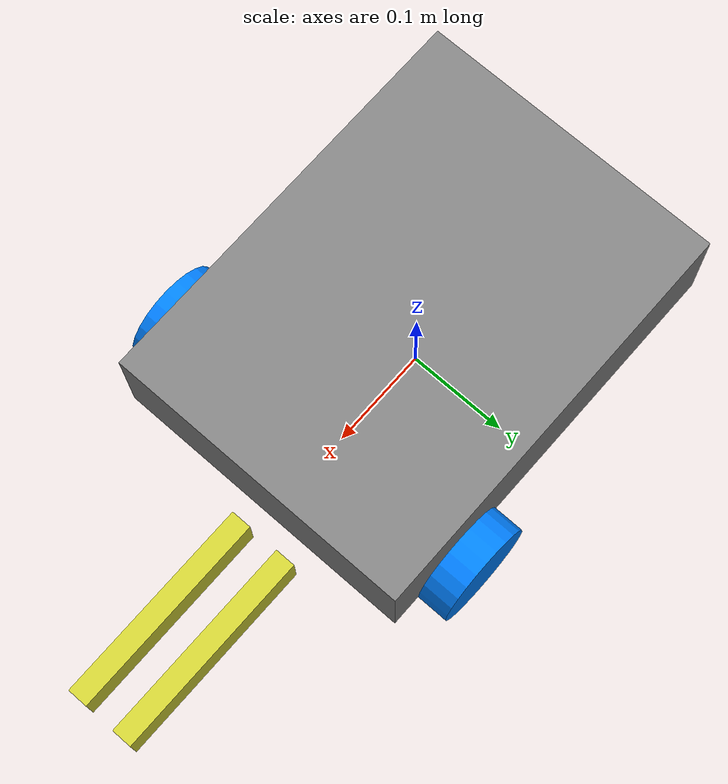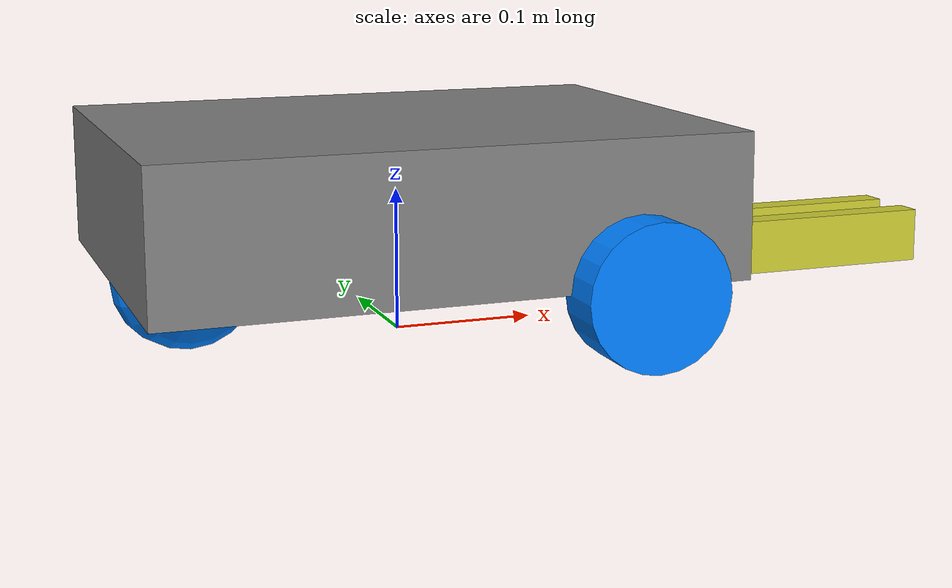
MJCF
<mujoco model="mobile_robot">
  <option timestep="0.002" />

  <asset>
    <mesh file="assets/gear_50.stl" name="gear_50" scale="0.002 0.002 0.002"/>
    <mesh file="assets/gripper_9g/Claw.stl" name="gripper_claw" scale="0.002 0.002 0.002"/>
    <mesh file="assets/gripper_9g/Base.stl" name="gripper_base" scale="0.002 0.002 0.002"/>
    <mesh file="assets/gripper_9g/Connector_Gear.stl" name="connector_gear" scale="0.002 0.002 0.002"/>
    <mesh file="assets/gripper_9g/Connector.stl" name="connector" scale="0.002 0.002 0.002"/>
    <texture name="wheel_texture" type="cube" builtin="gradient" rgb1="0.0 0.0 1.0" rgb2="0.0 1.0 1.0" width="256" height="256"/>
    <material name="wheel_mat" texture="wheel_texture" specular=".2" shininess=".1"/>
  </asset>

  <worldbody>
    <!-- Chassis -->
    <body name="base" pos="0 0 0.1">
      <freejoint name="base_joint"/>
      <inertial mass="5.0" pos="-0.1 0 -0.15" diaginertia="0.1 0.1 0.1" />
      <geom type="box" size="0.2 0.15 0.05" rgba="0.5 0.5 0.5 1" />
      <!-- Right Wheel -->
      <body name="right_wheel" pos="0.12 -0.16 -0.05" zaxis="0 1 0">
        <inertial mass="0.05" pos="0 0 0" diaginertia="0.001 0.001 0.001" />
        <joint name="right_joint" type="hinge" axis="0 0 1" frictionloss="0.1"/>
        <geom type="cylinder" size="0.05 0.02" material="wheel_mat" friction="10.0 0.05 0.005"/>
      </body>
      <!-- Left Wheel -->
      <body name="left_wheel" pos="0.12 0.16 -0.05" zaxis="0 1 0">
        <inertial mass="0.05" pos="0 0 0" diaginertia="0.001 0.001 0.001" />
        <joint name="left_joint" type="hinge" axis="0 0 1" frictionloss="0.1"/>
        <geom type="cylinder" size="0.05 0.02" material="wheel_mat" friction="10.0 0.05 0.005"/>
      </body>

      <!-- Center Ball -->
      <body name="center_wheel" pos="-0.15 0 -0.05" zaxis="0 1 0">
        <inertial mass="0.05" pos="0 0 0" diaginertia="0.001 0.001 0.001" />
        <joint name="center_joint" type="ball" frictionloss="0.1"/>
        <geom type="sphere" size="0.05" material="wheel_mat" friction="10.0 0.005 0.0005"/>
      </body>

      <body name="gripper_base" pos="0.2 0.02 -0.06">
        <inertial mass="0.1" pos="0 0 0" diaginertia="0.1 0.1 0.1" />
        <joint name="gripper_lift_joint" type="slide" pos="0.1 0 0" range="0 0.15" axis="0 0 1" />

        <body name="gripper_right_claw" pos="0.12 -0.025 0" euler="90 0 180">
          <joint name="gripper_right_claw_joint" type="slide" pos="0.1 0 0" range="0 1.0"/>
          <geom name="gripper_right_claw" type="box" size="0.1 0.02 0.01" rgba="0.8 0.8 0.2 1" friction="10.0 0.05 0.005"/>
        </body>

        <body name="gripper_left_claw" pos="0.12 0.025 0" euler="-90 0 180">
          <joint name="gripper_left_claw_joint" type="slide" pos="0.1 0 0" range="0 1.0"/>
          <geom name="gripper_left_claw" type="box" size="0.1 0.02 0.01" rgba="0.8 0.8 0.2 1" friction="10.0 0.05 0.005"/>
        </body>
      </body>
    </body>
  </worldbody>

  <!-- Actuators to drive the wheels -->
  <actuator>
    <velocity joint="right_joint" name="right_motor" kv="1.0" ctrllimited="true" ctrlrange="-50.0 50.0"/>
    <velocity joint="left_joint" name="left_motor" kv="1.0" ctrllimited="true" ctrlrange="-50.0 50.0"/>
    <position joint="gripper_right_claw_joint" name="gripper_right_pos"  kp="500" kv="20.0"/>
    <position joint="gripper_lift_joint" name="gripper_lift"  kp="1000" kv="40.0"/>
    <position joint="gripper_left_claw_joint" name="gripper_left_pos" kp="500" kv="20.0"/>
  </actuator>
</mujoco>
